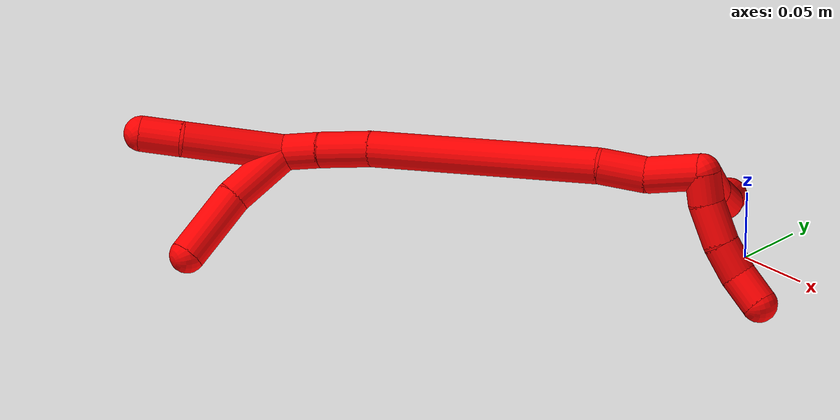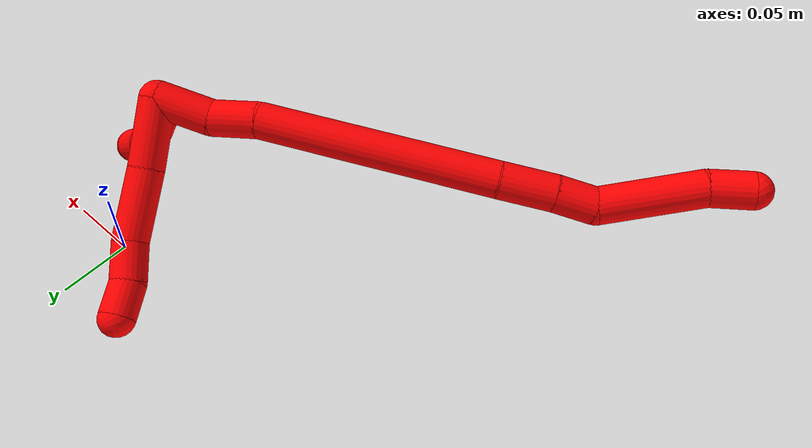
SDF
<sdf version="1.7">
 <world name="default">
  <model name="2">
   <static>0</static>
   <link name="2">
    <collision name="collision-cylinder-e_1_2_8">
     <pose>-0.018427 -0.008164 -0.012947 2.57902 -0.877656 -2.03791</pose>
     <geometry><cylinder><radius>0.0125</radius><length>0.047909</length></cylinder></geometry>
     <surface>
      <friction><ode><mu>1.16</mu><mu2>1.16</mu2><slip1>0</slip1><slip2>0</slip2></ode></friction>
      <contact><ode><kp>1e+06</kp><kd>1</kd><max_vel>0</max_vel><min_depth>0.001</min_depth></ode></contact>
     </surface>
    </collision>
    <visual name="visual-cylinder-e_1_2_8">
     <pose>-0.018427 -0.008164 -0.012947 2.57902 -0.877656 -2.03791</pose>
     <geometry><cylinder><radius>0.0125</radius><length>0.047909</length></cylinder></geometry>
     <material><ambient>1 0 0 1</ambient></material>
    </visual>
    <collision name="collision-cylinder-e_2_8_9">
     <pose>-0.055795 -0.022701 -0.041054 2.7436 -0.855808 -2.30896</pose>
     <geometry><cylinder><radius>0.0125</radius><length>0.050169</length></cylinder></geometry>
     <surface>
      <friction><ode><mu>1.16</mu><mu2>1.16</mu2><slip1>0</slip1><slip2>0</slip2></ode></friction>
      <contact><ode><kp>1e+06</kp><kd>1</kd><max_vel>0</max_vel><min_depth>0.001</min_depth></ode></contact>
     </surface>
    </collision>
    <visual name="visual-cylinder-e_2_8_9">
     <pose>-0.055795 -0.022701 -0.041054 2.7436 -0.855808 -2.30896</pose>
     <geometry><cylinder><radius>0.0125</radius><length>0.050169</length></cylinder></geometry>
     <material><ambient>1 0 0 1</ambient></material>
    </visual>
    <collision name="collision-cylinder-e_3_9_10">
     <pose>-0.086496 -0.029376 -0.063304 3.09917 -1.02788 -3.06648</pose>
     <geometry><cylinder><radius>0.0125</radius><length>0.027469</length></cylinder></geometry>
     <surface>
      <friction><ode><mu>1.16</mu><mu2>1.16</mu2><slip1>0</slip1><slip2>0</slip2></ode></friction>
      <contact><ode><kp>1e+06</kp><kd>1</kd><max_vel>0</max_vel><min_depth>0.001</min_depth></ode></contact>
     </surface>
    </collision>
    <visual name="visual-cylinder-e_3_9_10">
     <pose>-0.086496 -0.029376 -0.063304 3.09917 -1.02788 -3.06648</pose>
     <geometry><cylinder><radius>0.0125</radius><length>0.027469</length></cylinder></geometry>
     <material><ambient>1 0 0 1</ambient></material>
    </visual>
    <collision name="collision-cylinder-e_4_10_6">
     <pose>-0.106853 -0.029252 -0.079076 -3.09269 -0.779874 3.02271</pose>
     <geometry><cylinder><radius>0.0125</radius><length>0.024453</length></cylinder></geometry>
     <surface>
      <friction><ode><mu>1.16</mu><mu2>1.16</mu2><slip1>0</slip1><slip2>0</slip2></ode></friction>
      <contact><ode><kp>1e+06</kp><kd>1</kd><max_vel>0</max_vel><min_depth>0.001</min_depth></ode></contact>
     </surface>
    </collision>
    <visual name="visual-cylinder-e_4_10_6">
     <pose>-0.106853 -0.029252 -0.079076 -3.09269 -0.779874 3.02271</pose>
     <geometry><cylinder><radius>0.0125</radius><length>0.024453</length></cylinder></geometry>
     <material><ambient>1 0 0 1</ambient></material>
    </visual>
    <collision name="collision-cylinder-e_1_2_11">
     <pose>-0.003022 -0.010297 0.001074 1.46685 -0.283978 -0.256218</pose>
     <geometry><cylinder><radius>0.0125</radius><length>0.02157</length></cylinder></geometry>
     <surface>
      <friction><ode><mu>1.16</mu><mu2>1.16</mu2><slip1>0</slip1><slip2>0</slip2></ode></friction>
      <contact><ode><kp>1e+06</kp><kd>1</kd><max_vel>0</max_vel><min_depth>0.001</min_depth></ode></contact>
     </surface>
    </collision>
    <visual name="visual-cylinder-e_1_2_11">
     <pose>-0.003022 -0.010297 0.001074 1.46685 -0.283978 -0.256218</pose>
     <geometry><cylinder><radius>0.0125</radius><length>0.02157</length></cylinder></geometry>
     <material><ambient>1 0 0 1</ambient></material>
    </visual>
    <collision name="collision-cylinder-e_2_11_12">
     <pose>-0.006732 -0.035139 0.002136 1.57164 -0.047299 -0.04734</pose>
     <geometry><cylinder><radius>0.0125</radius><length>0.029123</length></cylinder></geometry>
     <surface>
      <friction><ode><mu>1.16</mu><mu2>1.16</mu2><slip1>0</slip1><slip2>0</slip2></ode></friction>
      <contact><ode><kp>1e+06</kp><kd>1</kd><max_vel>0</max_vel><min_depth>0.001</min_depth></ode></contact>
     </surface>
    </collision>
    <visual name="visual-cylinder-e_2_11_12">
     <pose>-0.006732 -0.035139 0.002136 1.57164 -0.047299 -0.04734</pose>
     <geometry><cylinder><radius>0.0125</radius><length>0.029123</length></cylinder></geometry>
     <material><ambient>1 0 0 1</ambient></material>
    </visual>
    <collision name="collision-cylinder-e_3_12_13">
     <pose>-0.007471 -0.061895 0.000305 1.71866 -0.004093 -0.004748</pose>
     <geometry><cylinder><radius>0.0125</radius><length>0.02469</length></cylinder></geometry>
     <surface>
      <friction><ode><mu>1.16</mu><mu2>1.16</mu2><slip1>0</slip1><slip2>0</slip2></ode></friction>
      <contact><ode><kp>1e+06</kp><kd>1</kd><max_vel>0</max_vel><min_depth>0.001</min_depth></ode></contact>
     </surface>
    </collision>
    <visual name="visual-cylinder-e_3_12_13">
     <pose>-0.007471 -0.061895 0.000305 1.71866 -0.004093 -0.004748</pose>
     <geometry><cylinder><radius>0.0125</radius><length>0.02469</length></cylinder></geometry>
     <material><ambient>1 0 0 1</ambient></material>
    </visual>
    <collision name="collision-cylinder-e_4_13_5">
     <pose>-0.003677 -0.085731 -0.002764 1.67792 0.317613 0.352892</pose>
     <geometry><cylinder><radius>0.0125</radius><length>0.024617</length></cylinder></geometry>
     <surface>
      <friction><ode><mu>1.16</mu><mu2>1.16</mu2><slip1>0</slip1><slip2>0</slip2></ode></friction>
      <contact><ode><kp>1e+06</kp><kd>1</kd><max_vel>0</max_vel><min_depth>0.001</min_depth></ode></contact>
     </surface>
    </collision>
    <visual name="visual-cylinder-e_4_13_5">
     <pose>-0.003677 -0.085731 -0.002764 1.67792 0.317613 0.352892</pose>
     <geometry><cylinder><radius>0.0125</radius><length>0.024617</length></cylinder></geometry>
     <material><ambient>1 0 0 1</ambient></material>
    </visual>
    <collision name="collision-cylinder-e_1_2_14">
     <pose>-0.014988 0.005431 0.011497 -0.441307 -0.867232 0.206967</pose>
     <geometry><cylinder><radius>0.0125</radius><length>0.03931</length></cylinder></geometry>
     <surface>
      <friction><ode><mu>1.16</mu><mu2>1.16</mu2><slip1>0</slip1><slip2>0</slip2></ode></friction>
      <contact><ode><kp>1e+06</kp><kd>1</kd><max_vel>0</max_vel><min_depth>0.001</min_depth></ode></contact>
     </surface>
    </collision>
    <visual name="visual-cylinder-e_1_2_14">
     <pose>-0.014988 0.005431 0.011497 -0.441307 -0.867232 0.206967</pose>
     <geometry><cylinder><radius>0.0125</radius><length>0.03931</length></cylinder></geometry>
     <material><ambient>1 0 0 1</ambient></material>
    </visual>
    <collision name="collision-cylinder-e_2_14_15">
     <pose>-0.039108 0.019496 0.033692 -0.679025 -0.586376 0.212444</pose>
     <geometry><cylinder><radius>0.0125</radius><length>0.033009</length></cylinder></geometry>
     <surface>
      <friction><ode><mu>1.16</mu><mu2>1.16</mu2><slip1>0</slip1><slip2>0</slip2></ode></friction>
      <contact><ode><kp>1e+06</kp><kd>1</kd><max_vel>0</max_vel><min_depth>0.001</min_depth></ode></contact>
     </surface>
    </collision>
    <visual name="visual-cylinder-e_2_14_15">
     <pose>-0.039108 0.019496 0.033692 -0.679025 -0.586376 0.212444</pose>
     <geometry><cylinder><radius>0.0125</radius><length>0.033009</length></cylinder></geometry>
     <material><ambient>1 0 0 1</ambient></material>
    </visual>
    <collision name="collision-cylinder-e_3_15_16">
     <pose>-0.105388 0.061216 0.092629 -0.601189 -0.773748 0.251251</pose>
     <geometry><cylinder><radius>0.0125</radius><length>0.163556</length></cylinder></geometry>
     <surface>
      <friction><ode><mu>1.16</mu><mu2>1.16</mu2><slip1>0</slip1><slip2>0</slip2></ode></friction>
      <contact><ode><kp>1e+06</kp><kd>1</kd><max_vel>0</max_vel><min_depth>0.001</min_depth></ode></contact>
     </surface>
    </collision>
    <visual name="visual-cylinder-e_3_15_16">
     <pose>-0.105388 0.061216 0.092629 -0.601189 -0.773748 0.251251</pose>
     <geometry><cylinder><radius>0.0125</radius><length>0.163556</length></cylinder></geometry>
     <material><ambient>1 0 0 1</ambient></material>
    </visual>
    <collision name="collision-cylinder-e_4_16_17">
     <pose>-0.175256 0.100303 0.152753 -0.467577 -0.762579 0.19037</pose>
     <geometry><cylinder><radius>0.0125</radius><length>0.036825</length></cylinder></geometry>
     <surface>
      <friction><ode><mu>1.16</mu><mu2>1.16</mu2><slip1>0</slip1><slip2>0</slip2></ode></friction>
      <contact><ode><kp>1e+06</kp><kd>1</kd><max_vel>0</max_vel><min_depth>0.001</min_depth></ode></contact>
     </surface>
    </collision>
    <visual name="visual-cylinder-e_4_16_17">
     <pose>-0.175256 0.100303 0.152753 -0.467577 -0.762579 0.19037</pose>
     <geometry><cylinder><radius>0.0125</radius><length>0.036825</length></cylinder></geometry>
     <material><ambient>1 0 0 1</ambient></material>
    </visual>
    <collision name="collision-cylinder-e_5_17_1">
     <pose>-0.198052 0.110133 0.173011 -0.428878 -0.830425 0.191433</pose>
     <geometry><cylinder><radius>0.0125</radius><length>0.027301</length></cylinder></geometry>
     <surface>
      <friction><ode><mu>1.16</mu><mu2>1.16</mu2><slip1>0</slip1><slip2>0</slip2></ode></friction>
      <contact><ode><kp>1e+06</kp><kd>1</kd><max_vel>0</max_vel><min_depth>0.001</min_depth></ode></contact>
     </surface>
    </collision>
    <visual name="visual-cylinder-e_5_17_1">
     <pose>-0.198052 0.110133 0.173011 -0.428878 -0.830425 0.191433</pose>
     <geometry><cylinder><radius>0.0125</radius><length>0.027301</length></cylinder></geometry>
     <material><ambient>1 0 0 1</ambient></material>
    </visual>
    <collision name="collision-cylinder-e_1_1_18">
     <pose>-0.214632 0.105993 0.20286 0.355338 -0.276613 -0.049978</pose>
     <geometry><cylinder><radius>0.0125</radius><length>0.047621</length></cylinder></geometry>
     <surface>
      <friction><ode><mu>1.16</mu><mu2>1.16</mu2><slip1>0</slip1><slip2>0</slip2></ode></friction>
      <contact><ode><kp>1e+06</kp><kd>1</kd><max_vel>0</max_vel><min_depth>0.001</min_depth></ode></contact>
     </surface>
    </collision>
    <visual name="visual-cylinder-e_1_1_18">
     <pose>-0.214632 0.105993 0.20286 0.355338 -0.276613 -0.049978</pose>
     <geometry><cylinder><radius>0.0125</radius><length>0.047621</length></cylinder></geometry>
     <material><ambient>1 0 0 1</ambient></material>
    </visual>
    <collision name="collision-cylinder-e_2_18_4">
     <pose>-0.225554 0.085198 0.246736 0.519975 -0.169583 -0.045211</pose>
     <geometry><cylinder><radius>0.0125</radius><length>0.052379</length></cylinder></geometry>
     <surface>
      <friction><ode><mu>1.16</mu><mu2>1.16</mu2><slip1>0</slip1><slip2>0</slip2></ode></friction>
      <contact><ode><kp>1e+06</kp><kd>1</kd><max_vel>0</max_vel><min_depth>0.001</min_depth></ode></contact>
     </surface>
    </collision>
    <visual name="visual-cylinder-e_2_18_4">
     <pose>-0.225554 0.085198 0.246736 0.519975 -0.169583 -0.045211</pose>
     <geometry><cylinder><radius>0.0125</radius><length>0.052379</length></cylinder></geometry>
     <material><ambient>1 0 0 1</ambient></material>
    </visual>
    <collision name="collision-cylinder-e_1_1_19">
     <pose>-0.220785 0.130966 0.209754 -0.539976 -0.36545 0.102188</pose>
     <geometry><cylinder><radius>0.0125</radius><length>0.070826</length></cylinder></geometry>
     <surface>
      <friction><ode><mu>1.16</mu><mu2>1.16</mu2><slip1>0</slip1><slip2>0</slip2></ode></friction>
      <contact><ode><kp>1e+06</kp><kd>1</kd><max_vel>0</max_vel><min_depth>0.001</min_depth></ode></contact>
     </surface>
    </collision>
    <visual name="visual-cylinder-e_1_1_19">
     <pose>-0.220785 0.130966 0.209754 -0.539976 -0.36545 0.102188</pose>
     <geometry><cylinder><radius>0.0125</radius><length>0.070826</length></cylinder></geometry>
     <material><ambient>1 0 0 1</ambient></material>
    </visual>
    <collision name="collision-cylinder-e_2_19_3">
     <pose>-0.241469 0.154924 0.248121 -0.607702 -0.582866 0.187568</pose>
     <geometry><cylinder><radius>0.0125</radius><length>0.029174</length></cylinder></geometry>
     <surface>
      <friction><ode><mu>1.16</mu><mu2>1.16</mu2><slip1>0</slip1><slip2>0</slip2></ode></friction>
      <contact><ode><kp>1e+06</kp><kd>1</kd><max_vel>0</max_vel><min_depth>0.001</min_depth></ode></contact>
     </surface>
    </collision>
    <visual name="visual-cylinder-e_2_19_3">
     <pose>-0.241469 0.154924 0.248121 -0.607702 -0.582866 0.187568</pose>
     <geometry><cylinder><radius>0.0125</radius><length>0.029174</length></cylinder></geometry>
     <material><ambient>1 0 0 1</ambient></material>
    </visual>
    <collision name="collision-sphere-3">
     <pose>-0.249498 0.161878 0.258119 0 -0 0</pose>
     <geometry><sphere><radius>0.0125</radius></sphere></geometry>
     <surface>
      <friction><ode><mu>1.16</mu><mu2>1.16</mu2><slip1>0</slip1><slip2>0</slip2></ode></friction>
      <contact><ode><kp>1e+06</kp><kd>1</kd><max_vel>0</max_vel><min_depth>0.001</min_depth></ode></contact>
     </surface>
    </collision>
    <visual name="visual-sphere-3">
     <pose>-0.249498 0.161878 0.258119 0 -0 0</pose>
     <geometry><sphere><radius>0.0125</radius></sphere></geometry>
     <material><ambient>1 0 0 1</ambient></material>
    </visual>
    <collision name="collision-sphere-19">
     <pose>-0.23344 0.14797 0.238123 0 -0 0</pose>
     <geometry><sphere><radius>0.0125</radius></sphere></geometry>
     <surface>
      <friction><ode><mu>1.16</mu><mu2>1.16</mu2><slip1>0</slip1><slip2>0</slip2></ode></friction>
      <contact><ode><kp>1e+06</kp><kd>1</kd><max_vel>0</max_vel><min_depth>0.001</min_depth></ode></contact>
     </surface>
    </collision>
    <visual name="visual-sphere-19">
     <pose>-0.23344 0.14797 0.238123 0 -0 0</pose>
     <geometry><sphere><radius>0.0125</radius></sphere></geometry>
     <material><ambient>1 0 0 1</ambient></material>
    </visual>
    <collision name="collision-sphere-11">
     <pose>-0.006043 -0.020594 0.002148 0 -0 0</pose>
     <geometry><sphere><radius>0.0125</radius></sphere></geometry>
     <surface>
      <friction><ode><mu>1.16</mu><mu2>1.16</mu2><slip1>0</slip1><slip2>0</slip2></ode></friction>
      <contact><ode><kp>1e+06</kp><kd>1</kd><max_vel>0</max_vel><min_depth>0.001</min_depth></ode></contact>
     </surface>
    </collision>
    <visual name="visual-sphere-11">
     <pose>-0.006043 -0.020594 0.002148 0 -0 0</pose>
     <geometry><sphere><radius>0.0125</radius></sphere></geometry>
     <material><ambient>1 0 0 1</ambient></material>
    </visual>
    <collision name="collision-sphere-6">
     <pose>-0.115451 -0.028827 -0.087759 0 -0 0</pose>
     <geometry><sphere><radius>0.0125</radius></sphere></geometry>
     <surface>
      <friction><ode><mu>1.16</mu><mu2>1.16</mu2><slip1>0</slip1><slip2>0</slip2></ode></friction>
      <contact><ode><kp>1e+06</kp><kd>1</kd><max_vel>0</max_vel><min_depth>0.001</min_depth></ode></contact>
     </surface>
    </collision>
    <visual name="visual-sphere-6">
     <pose>-0.115451 -0.028827 -0.087759 0 -0 0</pose>
     <geometry><sphere><radius>0.0125</radius></sphere></geometry>
     <material><ambient>1 0 0 1</ambient></material>
    </visual>
    <collision name="collision-sphere-10">
     <pose>-0.098255 -0.029677 -0.070393 0 -0 0</pose>
     <geometry><sphere><radius>0.0125</radius></sphere></geometry>
     <surface>
      <friction><ode><mu>1.16</mu><mu2>1.16</mu2><slip1>0</slip1><slip2>0</slip2></ode></friction>
      <contact><ode><kp>1e+06</kp><kd>1</kd><max_vel>0</max_vel><min_depth>0.001</min_depth></ode></contact>
     </surface>
    </collision>
    <visual name="visual-sphere-10">
     <pose>-0.098255 -0.029677 -0.070393 0 -0 0</pose>
     <geometry><sphere><radius>0.0125</radius></sphere></geometry>
     <material><ambient>1 0 0 1</ambient></material>
    </visual>
    <collision name="collision-sphere-9">
     <pose>-0.074736 -0.029075 -0.056214 0 -0 0</pose>
     <geometry><sphere><radius>0.0125</radius></sphere></geometry>
     <surface>
      <friction><ode><mu>1.16</mu><mu2>1.16</mu2><slip1>0</slip1><slip2>0</slip2></ode></friction>
      <contact><ode><kp>1e+06</kp><kd>1</kd><max_vel>0</max_vel><min_depth>0.001</min_depth></ode></contact>
     </surface>
    </collision>
    <visual name="visual-sphere-9">
     <pose>-0.074736 -0.029075 -0.056214 0 -0 0</pose>
     <geometry><sphere><radius>0.0125</radius></sphere></geometry>
     <material><ambient>1 0 0 1</ambient></material>
    </visual>
    <collision name="collision-sphere-2">
     <geometry><sphere><radius>0.0125</radius></sphere></geometry>
     <surface>
      <friction><ode><mu>1.16</mu><mu2>1.16</mu2><slip1>0</slip1><slip2>0</slip2></ode></friction>
      <contact><ode><kp>1e+06</kp><kd>1</kd><max_vel>0</max_vel><min_depth>0.001</min_depth></ode></contact>
     </surface>
    </collision>
    <visual name="visual-sphere-2">
     <geometry><sphere><radius>0.0125</radius></sphere></geometry>
     <material><ambient>1 0 0 1</ambient></material>
    </visual>
    <collision name="collision-sphere-8">
     <pose>-0.036854 -0.016327 -0.025894 0 -0 0</pose>
     <geometry><sphere><radius>0.0125</radius></sphere></geometry>
     <surface>
      <friction><ode><mu>1.16</mu><mu2>1.16</mu2><slip1>0</slip1><slip2>0</slip2></ode></friction>
      <contact><ode><kp>1e+06</kp><kd>1</kd><max_vel>0</max_vel><min_depth>0.001</min_depth></ode></contact>
     </surface>
    </collision>
    <visual name="visual-sphere-8">
     <pose>-0.036854 -0.016327 -0.025894 0 -0 0</pose>
     <geometry><sphere><radius>0.0125</radius></sphere></geometry>
     <material><ambient>1 0 0 1</ambient></material>
    </visual>
    <collision name="collision-sphere-12">
     <pose>-0.00742 -0.049685 0.002124 0 -0 0</pose>
     <geometry><sphere><radius>0.0125</radius></sphere></geometry>
     <surface>
      <friction><ode><mu>1.16</mu><mu2>1.16</mu2><slip1>0</slip1><slip2>0</slip2></ode></friction>
      <contact><ode><kp>1e+06</kp><kd>1</kd><max_vel>0</max_vel><min_depth>0.001</min_depth></ode></contact>
     </surface>
    </collision>
    <visual name="visual-sphere-12">
     <pose>-0.00742 -0.049685 0.002124 0 -0 0</pose>
     <geometry><sphere><radius>0.0125</radius></sphere></geometry>
     <material><ambient>1 0 0 1</ambient></material>
    </visual>
    <collision name="collision-sphere-13">
     <pose>-0.007521 -0.074105 -0.001514 0 -0 0</pose>
     <geometry><sphere><radius>0.0125</radius></sphere></geometry>
     <surface>
      <friction><ode><mu>1.16</mu><mu2>1.16</mu2><slip1>0</slip1><slip2>0</slip2></ode></friction>
      <contact><ode><kp>1e+06</kp><kd>1</kd><max_vel>0</max_vel><min_depth>0.001</min_depth></ode></contact>
     </surface>
    </collision>
    <visual name="visual-sphere-13">
     <pose>-0.007521 -0.074105 -0.001514 0 -0 0</pose>
     <geometry><sphere><radius>0.0125</radius></sphere></geometry>
     <material><ambient>1 0 0 1</ambient></material>
    </visual>
    <collision name="collision-sphere-5">
     <pose>0.000167 -0.097357 -0.004014 0 -0 0</pose>
     <geometry><sphere><radius>0.0125</radius></sphere></geometry>
     <surface>
      <friction><ode><mu>1.16</mu><mu2>1.16</mu2><slip1>0</slip1><slip2>0</slip2></ode></friction>
      <contact><ode><kp>1e+06</kp><kd>1</kd><max_vel>0</max_vel><min_depth>0.001</min_depth></ode></contact>
     </surface>
    </collision>
    <visual name="visual-sphere-5">
     <pose>0.000167 -0.097357 -0.004014 0 -0 0</pose>
     <geometry><sphere><radius>0.0125</radius></sphere></geometry>
     <material><ambient>1 0 0 1</ambient></material>
    </visual>
    <collision name="collision-sphere-14">
     <pose>-0.029975 0.010862 0.022995 0 -0 0</pose>
     <geometry><sphere><radius>0.0125</radius></sphere></geometry>
     <surface>
      <friction><ode><mu>1.16</mu><mu2>1.16</mu2><slip1>0</slip1><slip2>0</slip2></ode></friction>
      <contact><ode><kp>1e+06</kp><kd>1</kd><max_vel>0</max_vel><min_depth>0.001</min_depth></ode></contact>
     </surface>
    </collision>
    <visual name="visual-sphere-14">
     <pose>-0.029975 0.010862 0.022995 0 -0 0</pose>
     <geometry><sphere><radius>0.0125</radius></sphere></geometry>
     <material><ambient>1 0 0 1</ambient></material>
    </visual>
    <collision name="collision-sphere-15">
     <pose>-0.04824 0.02813 0.04439 0 -0 0</pose>
     <geometry><sphere><radius>0.0125</radius></sphere></geometry>
     <surface>
      <friction><ode><mu>1.16</mu><mu2>1.16</mu2><slip1>0</slip1><slip2>0</slip2></ode></friction>
      <contact><ode><kp>1e+06</kp><kd>1</kd><max_vel>0</max_vel><min_depth>0.001</min_depth></ode></contact>
     </surface>
    </collision>
    <visual name="visual-sphere-15">
     <pose>-0.04824 0.02813 0.04439 0 -0 0</pose>
     <geometry><sphere><radius>0.0125</radius></sphere></geometry>
     <material><ambient>1 0 0 1</ambient></material>
    </visual>
    <collision name="collision-sphere-16">
     <pose>-0.162536 0.094302 0.140868 0 -0 0</pose>
     <geometry><sphere><radius>0.0125</radius></sphere></geometry>
     <surface>
      <friction><ode><mu>1.16</mu><mu2>1.16</mu2><slip1>0</slip1><slip2>0</slip2></ode></friction>
      <contact><ode><kp>1e+06</kp><kd>1</kd><max_vel>0</max_vel><min_depth>0.001</min_depth></ode></contact>
     </surface>
    </collision>
    <visual name="visual-sphere-16">
     <pose>-0.162536 0.094302 0.140868 0 -0 0</pose>
     <geometry><sphere><radius>0.0125</radius></sphere></geometry>
     <material><ambient>1 0 0 1</ambient></material>
    </visual>
    <collision name="collision-sphere-17">
     <pose>-0.187975 0.106304 0.164637 0 -0 0</pose>
     <geometry><sphere><radius>0.0125</radius></sphere></geometry>
     <surface>
      <friction><ode><mu>1.16</mu><mu2>1.16</mu2><slip1>0</slip1><slip2>0</slip2></ode></friction>
      <contact><ode><kp>1e+06</kp><kd>1</kd><max_vel>0</max_vel><min_depth>0.001</min_depth></ode></contact>
     </surface>
    </collision>
    <visual name="visual-sphere-17">
     <pose>-0.187975 0.106304 0.164637 0 -0 0</pose>
     <geometry><sphere><radius>0.0125</radius></sphere></geometry>
     <material><ambient>1 0 0 1</ambient></material>
    </visual>
    <collision name="collision-sphere-1">
     <pose>-0.208129 0.113962 0.181385 0 -0 0</pose>
     <geometry><sphere><radius>0.0125</radius></sphere></geometry>
     <surface>
      <friction><ode><mu>1.16</mu><mu2>1.16</mu2><slip1>0</slip1><slip2>0</slip2></ode></friction>
      <contact><ode><kp>1e+06</kp><kd>1</kd><max_vel>0</max_vel><min_depth>0.001</min_depth></ode></contact>
     </surface>
    </collision>
    <visual name="visual-sphere-1">
     <pose>-0.208129 0.113962 0.181385 0 -0 0</pose>
     <geometry><sphere><radius>0.0125</radius></sphere></geometry>
     <material><ambient>1 0 0 1</ambient></material>
    </visual>
    <collision name="collision-sphere-18">
     <pose>-0.221134 0.098024 0.224334 0 -0 0</pose>
     <geometry><sphere><radius>0.0125</radius></sphere></geometry>
     <surface>
      <friction><ode><mu>1.16</mu><mu2>1.16</mu2><slip1>0</slip1><slip2>0</slip2></ode></friction>
      <contact><ode><kp>1e+06</kp><kd>1</kd><max_vel>0</max_vel><min_depth>0.001</min_depth></ode></contact>
     </surface>
    </collision>
    <visual name="visual-sphere-18">
     <pose>-0.221134 0.098024 0.224334 0 -0 0</pose>
     <geometry><sphere><radius>0.0125</radius></sphere></geometry>
     <material><ambient>1 0 0 1</ambient></material>
    </visual>
    <collision name="collision-sphere-4">
     <pose>-0.229974 0.072373 0.269138 0 -0 0</pose>
     <geometry><sphere><radius>0.0125</radius></sphere></geometry>
     <surface>
      <friction><ode><mu>1.16</mu><mu2>1.16</mu2><slip1>0</slip1><slip2>0</slip2></ode></friction>
      <contact><ode><kp>1e+06</kp><kd>1</kd><max_vel>0</max_vel><min_depth>0.001</min_depth></ode></contact>
     </surface>
    </collision>
    <visual name="visual-sphere-4">
     <pose>-0.229974 0.072373 0.269138 0 -0 0</pose>
     <geometry><sphere><radius>0.0125</radius></sphere></geometry>
     <material><ambient>1 0 0 1</ambient></material>
    </visual>
    <inertial>
     <pose>-0.113203 0.043919 0.087219 0 -0 0</pose>
     <mass>0.75</mass>
     <inertia>
      <ixx>0.000354</ixx>
      <ixy>0</ixy>
      <ixz>0</ixz>
      <iyy>0.000486</iyy>
      <iyz>0</iyz>
      <izz>0.000186</izz>
     </inertia>
    </inertial>
   </link>
   <pose>0.013014 -0.061809 0.093142 1.65215 -0.563361 -0.194583</pose>
  </model>
 </world>
</sdf>
